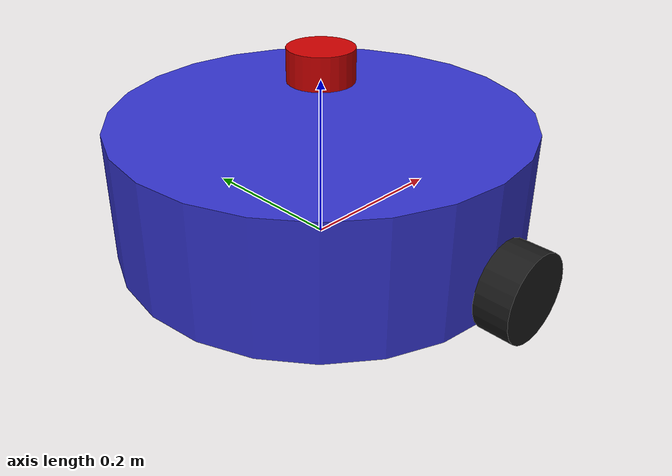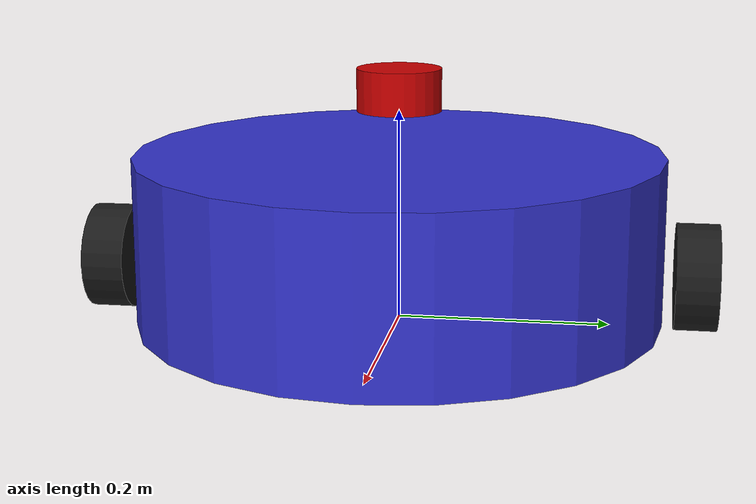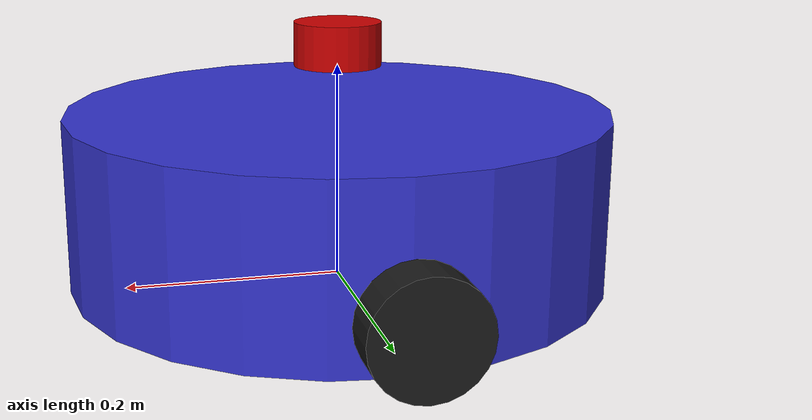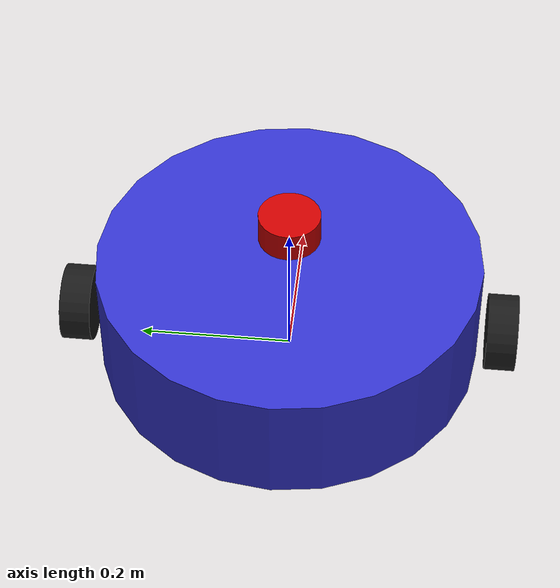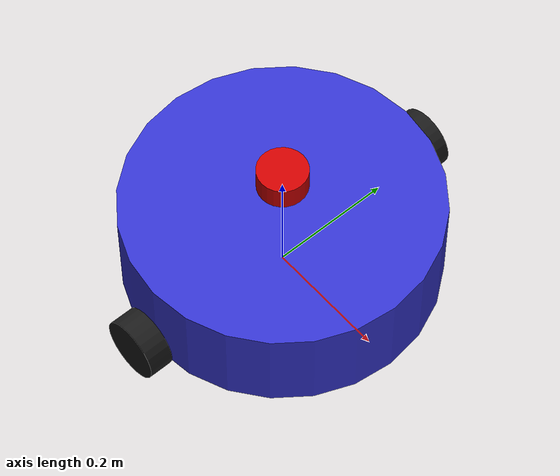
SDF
<?xml version="1.0" ?>
<sdf version="1.9">
  <model name="sim_robot">
    <static>false</static>

    <!-- ==================== BASE LINK ==================== -->
    <link name="base_footprint">
      <pose>0 0 0 0 0 0</pose>
    </link>

    <link name="base_link">
      <pose>0 0 0.08 0 0 0</pose>
      <inertial>
        <mass>20.0</mass>
        <inertia>
          <ixx>0.26</ixx><ixy>0</ixy><ixz>0</ixz>
          <iyy>0.26</iyy><iyz>0</iyz>
          <izz>0.20</izz>
        </inertia>
      </inertial>
      <collision name="base_collision">
        <geometry>
          <cylinder>
            <radius>0.25</radius>
            <length>0.10</length>
          </cylinder>
        </geometry>
      </collision>
      <visual name="base_visual">
        <geometry>
          <cylinder>
            <radius>0.25</radius>
            <length>0.16</length>
          </cylinder>
        </geometry>
        <material>
          <ambient>0.2 0.2 0.8 1</ambient>
          <diffuse>0.2 0.2 0.8 1</diffuse>
        </material>
      </visual>
    </link>

    <joint name="base_footprint_joint" type="fixed">
      <parent>base_footprint</parent>
      <child>base_link</child>
    </joint>

    <!-- ==================== LEFT WHEEL ==================== -->
    <link name="left_wheel">
      <pose>0 0.28 0.05 -1.5707963 0 0</pose>
      <inertial>
        <mass>1.0</mass>
        <inertia>
          <ixx>0.0013</ixx><ixy>0</ixy><ixz>0</ixz>
          <iyy>0.0013</iyy><iyz>0</iyz>
          <izz>0.00125</izz>
        </inertia>
      </inertial>
      <collision name="left_wheel_collision">
        <geometry>
          <cylinder>
            <radius>0.05</radius>
            <length>0.04</length>
          </cylinder>
        </geometry>
        <surface>
          <friction>
            <ode>
              <mu>1.0</mu>
              <mu2>1.0</mu2>
            </ode>
          </friction>
        </surface>
      </collision>
      <visual name="left_wheel_visual">
        <geometry>
          <cylinder>
            <radius>0.05</radius>
            <length>0.04</length>
          </cylinder>
        </geometry>
        <material>
          <ambient>0.1 0.1 0.1 1</ambient>
          <diffuse>0.1 0.1 0.1 1</diffuse>
        </material>
      </visual>
    </link>

    <joint name="left_wheel_joint" type="revolute">
      <parent>base_link</parent>
      <child>left_wheel</child>
      <axis>
        <xyz>0 0 1</xyz>
        <limit>
          <lower>-1e16</lower>
          <upper>1e16</upper>
          <!-- Explicit max motor torque so DART's velocity servo can
               apply real force through the wheel-ground contact. -->
          <effort>20.0</effort>
          <velocity>20.0</velocity>
        </limit>
        <dynamics>
          <friction>0.0</friction>
          <damping>0.0</damping>
        </dynamics>
      </axis>
    </joint>

    <!-- ==================== RIGHT WHEEL ==================== -->
    <link name="right_wheel">
      <pose>0 -0.28 0.05 -1.5707963 0 0</pose>
      <inertial>
        <mass>1.0</mass>
        <inertia>
          <ixx>0.0013</ixx><ixy>0</ixy><ixz>0</ixz>
          <iyy>0.0013</iyy><iyz>0</iyz>
          <izz>0.00125</izz>
        </inertia>
      </inertial>
      <collision name="right_wheel_collision">
        <geometry>
          <cylinder>
            <radius>0.05</radius>
            <length>0.04</length>
          </cylinder>
        </geometry>
        <surface>
          <friction>
            <ode>
              <mu>1.0</mu>
              <mu2>1.0</mu2>
            </ode>
          </friction>
        </surface>
      </collision>
      <visual name="right_wheel_visual">
        <geometry>
          <cylinder>
            <radius>0.05</radius>
            <length>0.04</length>
          </cylinder>
        </geometry>
        <material>
          <ambient>0.1 0.1 0.1 1</ambient>
          <diffuse>0.1 0.1 0.1 1</diffuse>
        </material>
      </visual>
    </link>

    <joint name="right_wheel_joint" type="revolute">
      <parent>base_link</parent>
      <child>right_wheel</child>
      <axis>
        <xyz>0 0 1</xyz>
        <limit>
          <lower>-1e16</lower>
          <upper>1e16</upper>
          <effort>20.0</effort>
          <velocity>20.0</velocity>
        </limit>
        <dynamics>
          <friction>0.0</friction>
          <damping>0.0</damping>
        </dynamics>
      </axis>
    </joint>

    <!-- ==================== FRONT CASTER ==================== -->
    <link name="caster">
      <pose>0.18 0 0.025 0 0 0</pose>
      <inertial>
        <mass>0.5</mass>
        <inertia>
          <ixx>0.00016</ixx><ixy>0</ixy><ixz>0</ixz>
          <iyy>0.00016</iyy><iyz>0</iyz>
          <izz>0.00016</izz>
        </inertia>
      </inertial>
      <collision name="caster_collision">
        <geometry>
          <sphere>
            <radius>0.025</radius>
          </sphere>
        </geometry>
        <surface>
          <friction>
            <ode>
              <mu>0.0</mu>
              <mu2>0.0</mu2>
            </ode>
          </friction>
        </surface>
      </collision>
      <visual name="caster_visual">
        <geometry>
          <sphere>
            <radius>0.025</radius>
          </sphere>
        </geometry>
        <material>
          <ambient>0.3 0.3 0.3 1</ambient>
          <diffuse>0.3 0.3 0.3 1</diffuse>
        </material>
      </visual>
    </link>

    <joint name="caster_joint" type="fixed">
      <parent>base_link</parent>
      <child>caster</child>
    </joint>

    <!-- ==================== REAR CASTER ==================== -->
    <link name="rear_caster">
      <pose>-0.18 0 0.025 0 0 0</pose>
      <inertial>
        <mass>0.5</mass>
        <inertia>
          <ixx>0.00016</ixx><ixy>0</ixy><ixz>0</ixz>
          <iyy>0.00016</iyy><iyz>0</iyz>
          <izz>0.00016</izz>
        </inertia>
      </inertial>
      <collision name="rear_caster_collision">
        <geometry>
          <sphere>
            <radius>0.025</radius>
          </sphere>
        </geometry>
        <surface>
          <friction>
            <ode>
              <mu>0.0</mu>
              <mu2>0.0</mu2>
            </ode>
          </friction>
        </surface>
      </collision>
      <visual name="rear_caster_visual">
        <geometry>
          <sphere>
            <radius>0.025</radius>
          </sphere>
        </geometry>
        <material>
          <ambient>0.3 0.3 0.3 1</ambient>
          <diffuse>0.3 0.3 0.3 1</diffuse>
        </material>
      </visual>
    </link>

    <joint name="rear_caster_joint" type="fixed">
      <parent>base_link</parent>
      <child>rear_caster</child>
    </joint>

    <!-- ==================== LIDAR ==================== -->
    <link name="lidar_link">
      <pose>0 0 0.22 0 0 0</pose>
      <inertial>
        <mass>0.2</mass>
        <inertia>
          <ixx>0.0001</ixx><ixy>0</ixy><ixz>0</ixz>
          <iyy>0.0001</iyy><iyz>0</iyz>
          <izz>0.0001</izz>
        </inertia>
      </inertial>
      <collision name="lidar_collision">
        <geometry>
          <cylinder>
            <radius>0.04</radius>
            <length>0.04</length>
          </cylinder>
        </geometry>
      </collision>
      <visual name="lidar_visual">
        <geometry>
          <cylinder>
            <radius>0.04</radius>
            <length>0.04</length>
          </cylinder>
        </geometry>
        <material>
          <ambient>0.8 0.0 0.0 1</ambient>
          <diffuse>0.8 0.0 0.0 1</diffuse>
        </material>
      </visual>
      <sensor name="gpu_lidar" type="gpu_lidar">
        <always_on>true</always_on>
        <update_rate>10</update_rate>
        <topic>scan</topic>
        <lidar>
          <scan>
            <horizontal>
              <samples>360</samples>
              <resolution>1</resolution>
              <min_angle>-3.14159265</min_angle>
              <max_angle>3.14159265</max_angle>
            </horizontal>
            <vertical>
              <samples>1</samples>
              <resolution>1</resolution>
              <min_angle>0</min_angle>
              <max_angle>0</max_angle>
            </vertical>
          </scan>
          <range>
            <min>0.12</min>
            <max>25.0</max>
            <resolution>0.01</resolution>
          </range>
          <noise>
            <type>gaussian</type>
            <mean>0</mean>
            <stddev>0.005</stddev>
          </noise>
        </lidar>
        <visualize>false</visualize>
      </sensor>
    </link>

    <joint name="lidar_joint" type="fixed">
      <parent>base_link</parent>
      <child>lidar_link</child>
    </joint>

    <!-- ==================== PLUGINS ==================== -->

    <!-- Diff-Drive Controller -->
    <plugin
      filename="gz-sim-diff-drive-system"
      name="gz::sim::systems::DiffDrive">
      <left_joint>left_wheel_joint</left_joint>
      <right_joint>right_wheel_joint</right_joint>
      <wheel_separation>0.56</wheel_separation>
      <wheel_radius>0.05</wheel_radius>
      <max_linear_acceleration>0.5</max_linear_acceleration>
      <max_angular_acceleration>1.5</max_angular_acceleration>
      <!-- Wheels only. OdometryPublisher below supplies odom and TF from
           the simulated pose, so wheel slip cannot drag the lidar scan. -->
      <odom_publish_frequency>0</odom_publish_frequency>
      <topic>cmd_vel</topic>
      <odom_topic>/model/sim_robot/wheel_odometry</odom_topic>
      <tf_topic>/model/sim_robot/wheel_tf</tf_topic>
      <frame_id>odom</frame_id>
      <child_frame_id>base_link</child_frame_id>
    </plugin>

    <!-- Same pair as ros_gz_project_template diff_drive.sdf. PosePublisher
         emits link poses. OdometryPublisher emits odom -> base_link from
         worldPose(), not from wheel joints. -->
    <plugin
      filename="gz-sim-pose-publisher-system"
      name="gz::sim::systems::PosePublisher">
      <publish_link_pose>true</publish_link_pose>
      <use_pose_vector_msg>true</use_pose_vector_msg>
      <static_publisher>true</static_publisher>
      <static_update_frequency>1</static_update_frequency>
      <topic>/model/sim_robot/pose</topic>
    </plugin>

    <plugin
      filename="gz-sim-odometry-publisher-system"
      name="gz::sim::systems::OdometryPublisher">
      <odom_frame>odom</odom_frame>
      <robot_base_frame>base_link</robot_base_frame>
      <dimensions>2</dimensions>
      <odom_publish_frequency>50</odom_publish_frequency>
      <odom_topic>/model/sim_robot/odometry</odom_topic>
      <tf_topic>/model/sim_robot/tf</tf_topic>
    </plugin>

    <!-- Joint State Publisher -->
    <plugin
      filename="gz-sim-joint-state-publisher-system"
      name="gz::sim::systems::JointStatePublisher">
      <joint_name>left_wheel_joint</joint_name>
      <joint_name>right_wheel_joint</joint_name>
    </plugin>

  </model>
</sdf>
